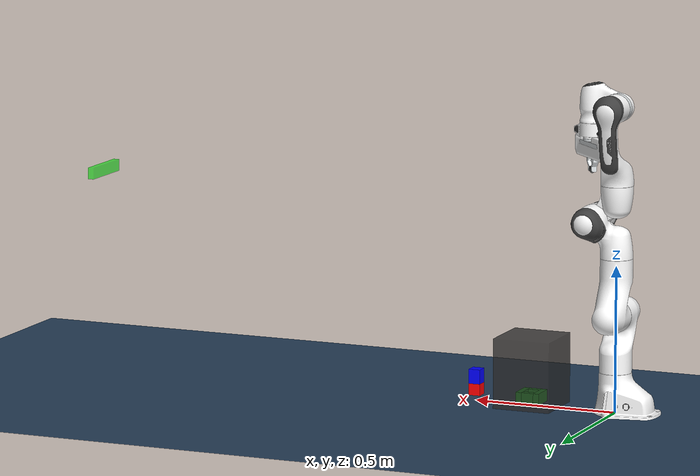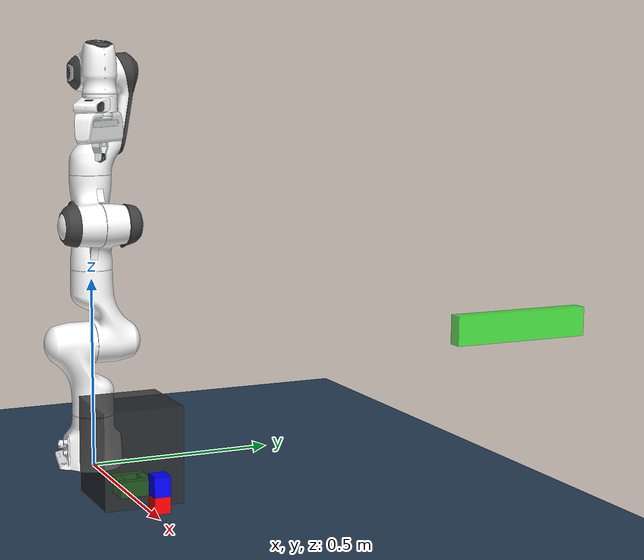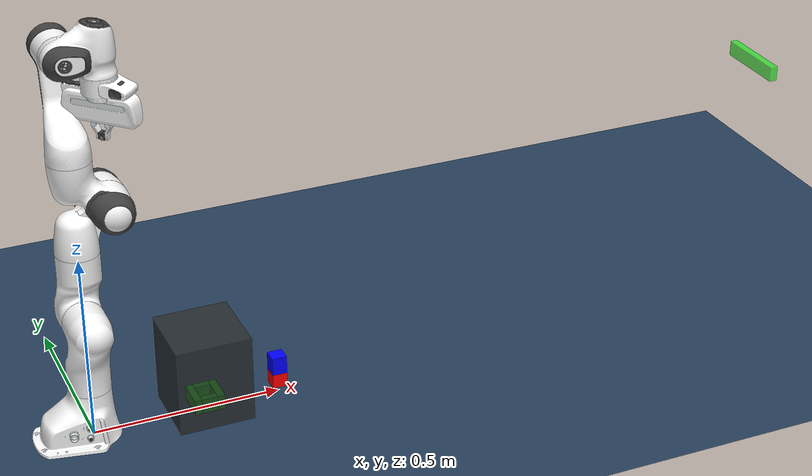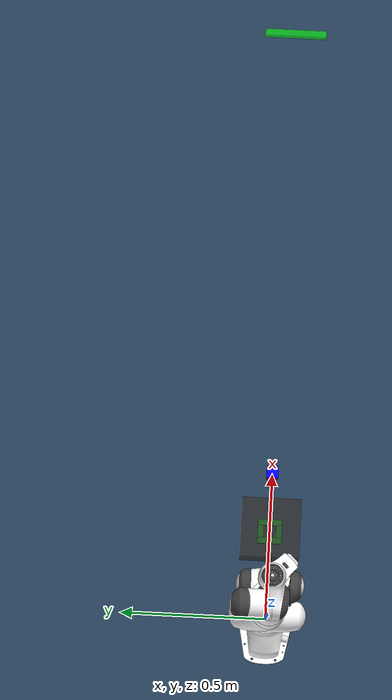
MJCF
<mujoco model="panda_peg_hole">
    <option integrator="implicit"
            timestep="0.001"
            gravity="0 0 -9.81"
            cone = "elliptic"
            iterations="300"
            tolerance="1e-12"
            />

  <include file="panda.xml"/>

  <statistic center="0.3 0 0.4" extent="1"/>

  <visual>
    <headlight diffuse="0.6 0.6 0.6" ambient="0.3 0.3 0.3" specular="0 0 0"/>
    <rgba haze="0.15 0.25 0.35 1"/>
    <global azimuth="120" elevation="-20"/>
  </visual>

  <asset>
    <texture type="skybox" builtin="gradient" rgb1="0.3 0.5 0.7" rgb2="0 0 0" width="512" height="3072"/>
    <texture type="2d" name="groundplane" builtin="checker" mark="edge" rgb1="0.2 0.3 0.4" rgb2="0.1 0.2 0.3"
      markrgb="0.8 0.8 0.8" width="300" height="300"/>
    <material name="groundplane" texture="groundplane" texuniform="true" texrepeat="5 5" reflectance="0.2"/>
  </asset>

  <worldbody>
    <light pos="0 0 1.5" dir="0 0 -1" directional="true"/>
    <geom name="floor" size="0 0 0.05" type="plane" material="groundplane"/>

    <body name="top_camera"  pos="1.9 0 0.7" euler="0 0 0">
          <camera name="top_camera" pos="0. 0. 0." mode="fixed" quat="0.56 0.43 0.43 0.56" fovy="45"/>
          <geom type="box" size="0.01 0.1 0.02" rgba="0. 1.0 0. 0.6" class="visual"/>
    </body>

  <body name="peg" pos="0.5 0 0.04">
    <freejoint name="peg"/>
    <geom name="peg_geom_down" pos="0 0 0" size="0.02 0.02 0.02" type="box" rgba="1 0 0 1" mass="0.005" friction="30.0 0.15 0.05" condim="4"/>
    <geom name="peg_geom_up" pos="0 0 0.045" size="0.02 0.02 0.025" type="box" rgba="0 0 1 1" mass="0.1" friction="30.0 0.15 0.05" solref="0.001 1"
          solimp="0.99 0.99 0.0001" condim="4"/>
  </body>

  <body name="hole" pos="0.3 0 0.03">
    <geom name="hole_left" type="box" pos="-0.031 0 0" size="0.01 0.041 0.02" rgba="0 1 0 1"/>
    <geom name="hole_right" type="box" pos="0.031 0 0" size="0.01 0.041 0.02" rgba="0 1 0 1"/>
    <geom name="hole_front" type="box" pos="0 0.031 0" size="0.021 0.01 0.02" rgba="0 1 0 1"/>
    <geom name="hole_back" type="box" pos="0 -0.031 0" size="0.021 0.01 0.02" rgba="0 1 0 1"/>
  </body>

  <body name="table" pos="0.3 0 0.12">
    <geom name="table" type="box" pos="0 0 0" size="0.1 0.1 0.12" rgba="0.2 0.2 0.2 0.8"/>
  </body>

  </worldbody>

    <keyframe>
        <key
  name="grasp_home"
  qpos="1.89918e-16 -0.784093 0.000184611 -2.36231 -0.00031656 1.56986 0.785 0.0199969 0.0199969 0.306079 -3.20559e-05 0.42704 0.999997 -0.000221118 -0.00243535 0.000266194"
  ctrl="0 -0.785 0 -2.356 0 1.571 0.785 0"
    />
</keyframe>

</mujoco>

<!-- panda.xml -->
<mujoco model="panda">
  <compiler angle="radian" meshdir="assets" autolimits="true"/>

  <option integrator="implicitfast"/>

  <default>
    <default class="panda">
      <material specular="0.5" shininess="0.25"/>
      <joint armature="0.1" damping="1" axis="0 0 1" range="-2.8973 2.8973"/>
      <general dyntype="none" biastype="affine" ctrlrange="-2.8973 2.8973" forcerange="-87 87"/>
      <default class="finger">
        <joint axis="0 1 0" type="slide" range="0 0.04"/>
      </default>

      <default class="visual">
        <geom type="mesh" contype="0" conaffinity="0" group="2"/>
      </default>
      <default class="collision">
  <geom type="mesh"
        group="3"
        friction="10 0.1 0.01"
        condim="4"
        solref="0.003 1"
        solimp="0.95 0.99 0.001"/>

  <default class="fingertip_pad_collision_1">
    <geom type="box"
          size="0.0085 0.004 0.0085"
          pos="0 0.0055 0.0445"
          friction="10 0.1 0.01"
          condim="4"
          solref="0.003 1"
          solimp="0.95 0.99 0.001"/>
  </default>

  <default class="fingertip_pad_collision_2">
    <geom type="box"
          size="0.003 0.002 0.003"
          pos="0.0055 0.002 0.05"
          friction="10 0.1 0.01"
          condim="4"
          solref="0.003 1"
          solimp="0.95 0.99 0.001"/>
  </default>

  <default class="fingertip_pad_collision_3">
    <geom type="box"
          size="0.003 0.002 0.003"
          pos="-0.0055 0.002 0.05"
          friction="10 0.1 0.01"
          condim="4"
          solref="0.003 1"
          solimp="0.95 0.99 0.001"/>
  </default>

  <default class="fingertip_pad_collision_4">
    <geom type="box"
          size="0.003 0.002 0.0035"
          pos="0.0055 0.002 0.0395"
          friction="10 0.1 0.01"
          condim="4"
          solref="0.003 1"
          solimp="0.95 0.99 0.001"/>
  </default>

  <default class="fingertip_pad_collision_5">
    <geom type="box"
          size="0.003 0.002 0.0035"
          pos="-0.0055 0.002 0.0395"
          friction="10 0.1 0.01"
          condim="4"
          solref="0.003 1"
          solimp="0.95 0.99 0.001"/>
  </default>
</default>
    </default>
  </default>

  <asset>
    <material class="panda" name="white" rgba="1 1 1 1"/>
    <material class="panda" name="off_white" rgba="0.901961 0.921569 0.929412 1"/>
    <material class="panda" name="black" rgba="0.25 0.25 0.25 1"/>
    <material class="panda" name="green" rgba="0 1 0 1"/>
    <material class="panda" name="light_blue" rgba="0.039216 0.541176 0.780392 1"/>

    <!-- Collision meshes -->
    <mesh name="link0_c" file="link0.stl"/>
    <mesh name="link1_c" file="link1.stl"/>
    <mesh name="link2_c" file="link2.stl"/>
    <mesh name="link3_c" file="link3.stl"/>
    <mesh name="link4_c" file="link4.stl"/>
    <mesh name="link5_c0" file="link5_collision_0.obj"/>
    <mesh name="link5_c1" file="link5_collision_1.obj"/>
    <mesh name="link5_c2" file="link5_collision_2.obj"/>
    <mesh name="link6_c" file="link6.stl"/>
    <mesh name="link7_c" file="link7.stl"/>
    <mesh name="hand_c" file="hand.stl"/>

    <!-- Visual meshes -->
    <mesh file="link0_0.obj"/>
    <mesh file="link0_1.obj"/>
    <mesh file="link0_2.obj"/>
    <mesh file="link0_3.obj"/>
    <mesh file="link0_4.obj"/>
    <mesh file="link0_5.obj"/>
    <mesh file="link0_7.obj"/>
    <mesh file="link0_8.obj"/>
    <mesh file="link0_9.obj"/>
    <mesh file="link0_10.obj"/>
    <mesh file="link0_11.obj"/>
    <mesh file="link1.obj"/>
    <mesh file="link2.obj"/>
    <mesh file="link3_0.obj"/>
    <mesh file="link3_1.obj"/>
    <mesh file="link3_2.obj"/>
    <mesh file="link3_3.obj"/>
    <mesh file="link4_0.obj"/>
    <mesh file="link4_1.obj"/>
    <mesh file="link4_2.obj"/>
    <mesh file="link4_3.obj"/>
    <mesh file="link5_0.obj"/>
    <mesh file="link5_1.obj"/>
    <mesh file="link5_2.obj"/>
    <mesh file="link6_0.obj"/>
    <mesh file="link6_1.obj"/>
    <mesh file="link6_2.obj"/>
    <mesh file="link6_3.obj"/>
    <mesh file="link6_4.obj"/>
    <mesh file="link6_5.obj"/>
    <mesh file="link6_6.obj"/>
    <mesh file="link6_7.obj"/>
    <mesh file="link6_8.obj"/>
    <mesh file="link6_9.obj"/>
    <mesh file="link6_10.obj"/>
    <mesh file="link6_11.obj"/>
    <mesh file="link6_12.obj"/>
    <mesh file="link6_13.obj"/>
    <mesh file="link6_14.obj"/>
    <mesh file="link6_15.obj"/>
    <mesh file="link6_16.obj"/>
    <mesh file="link7_0.obj"/>
    <mesh file="link7_1.obj"/>
    <mesh file="link7_2.obj"/>
    <mesh file="link7_3.obj"/>
    <mesh file="link7_4.obj"/>
    <mesh file="link7_5.obj"/>
    <mesh file="link7_6.obj"/>
    <mesh file="link7_7.obj"/>
    <mesh file="hand_0.obj"/>
    <mesh file="hand_1.obj"/>
    <mesh file="hand_2.obj"/>
    <mesh file="hand_3.obj"/>
    <mesh file="hand_4.obj"/>
    <mesh file="finger_0.obj"/>
    <mesh file="finger_1.obj"/>
  </asset>

  <worldbody>
    <light name="top" pos="0 0 2" mode="trackcom"/>
    <body name="link0" childclass="panda">
      <inertial mass="0.629769" pos="-0.041018 -0.00014 0.049974"
                fullinertia="0.00315 0.00388 0.004285 8.2904e-7 0.00015 8.2299e-6"/>
      <geom mesh="link0_0" material="off_white" class="visual"/>
      <geom mesh="link0_1" material="black" class="visual"/>
      <geom mesh="link0_2" material="off_white" class="visual"/>
      <geom mesh="link0_3" material="black" class="visual"/>
      <geom mesh="link0_4" material="off_white" class="visual"/>
      <geom mesh="link0_5" material="black" class="visual"/>
      <geom mesh="link0_7" material="white" class="visual"/>
      <geom mesh="link0_8" material="white" class="visual"/>
      <geom mesh="link0_9" material="black" class="visual"/>
      <geom mesh="link0_10" material="off_white" class="visual"/>
      <geom mesh="link0_11" material="white" class="visual"/>
      <geom mesh="link0_c" class="collision"/>
      <body name="link1" pos="0 0 0.333">
        <inertial mass="4.970684" pos="0.003875 0.002081 -0.04762"
          fullinertia="0.70337 0.70661 0.0091170 -0.00013900 0.0067720 0.019169"/>
        <joint name="joint1"/>
        <geom material="white" mesh="link1" class="visual"/>
        <geom mesh="link1_c" class="collision"/>
        <body name="link2" quat="1 -1 0 0">
          <inertial mass="0.646926" pos="-0.003141 -0.02872 0.003495"
            fullinertia="0.0079620 2.8110e-2 2.5995e-2 -3.925e-3 1.0254e-2 7.04e-4"/>
          <joint name="joint2" range="-1.7628 1.7628"/>
          <geom material="white" mesh="link2" class="visual"/>
          <geom mesh="link2_c" class="collision"/>
          <body name="link3" pos="0 -0.316 0" quat="1 1 0 0">
            <joint name="joint3"/>
            <inertial mass="3.228604" pos="2.7518e-2 3.9252e-2 -6.6502e-2"
              fullinertia="3.7242e-2 3.6155e-2 1.083e-2 -4.761e-3 -1.1396e-2 -1.2805e-2"/>
            <geom mesh="link3_0" material="white" class="visual"/>
            <geom mesh="link3_1" material="white" class="visual"/>
            <geom mesh="link3_2" material="white" class="visual"/>
            <geom mesh="link3_3" material="black" class="visual"/>
            <geom mesh="link3_c" class="collision"/>
            <body name="link4" pos="0.0825 0 0" quat="1 1 0 0">
              <inertial mass="3.587895" pos="-5.317e-2 1.04419e-1 2.7454e-2"
                fullinertia="2.5853e-2 1.9552e-2 2.8323e-2 7.796e-3 -1.332e-3 8.641e-3"/>
              <joint name="joint4" range="-3.0718 -0.0698"/>
              <geom mesh="link4_0" material="white" class="visual"/>
              <geom mesh="link4_1" material="white" class="visual"/>
              <geom mesh="link4_2" material="black" class="visual"/>
              <geom mesh="link4_3" material="white" class="visual"/>
              <geom mesh="link4_c" class="collision"/>
              <body name="link5" pos="-0.0825 0.384 0" quat="1 -1 0 0">
                <inertial mass="1.225946" pos="-1.1953e-2 4.1065e-2 -3.8437e-2"
                  fullinertia="3.5549e-2 2.9474e-2 8.627e-3 -2.117e-3 -4.037e-3 2.29e-4"/>
                <joint name="joint5"/>
                <geom mesh="link5_0" material="black" class="visual"/>
                <geom mesh="link5_1" material="white" class="visual"/>
                <geom mesh="link5_2" material="white" class="visual"/>
                <geom mesh="link5_c0" class="collision"/>
                <geom mesh="link5_c1" class="collision"/>
                <geom mesh="link5_c2" class="collision"/>
                <body name="link6" quat="1 1 0 0">
                  <inertial mass="1.666555" pos="6.0149e-2 -1.4117e-2 -1.0517e-2"
                    fullinertia="1.964e-3 4.354e-3 5.433e-3 1.09e-4 -1.158e-3 3.41e-4"/>
                  <joint name="joint6" range="-0.0175 3.7525"/>
                  <geom mesh="link6_0" material="off_white" class="visual"/>
                  <geom mesh="link6_1" material="white" class="visual"/>
                  <geom mesh="link6_2" material="black" class="visual"/>
                  <geom mesh="link6_3" material="white" class="visual"/>
                  <geom mesh="link6_4" material="white" class="visual"/>
                  <geom mesh="link6_5" material="white" class="visual"/>
                  <geom mesh="link6_6" material="white" class="visual"/>
                  <geom mesh="link6_7" material="light_blue" class="visual"/>
                  <geom mesh="link6_8" material="light_blue" class="visual"/>
                  <geom mesh="link6_9" material="black" class="visual"/>
                  <geom mesh="link6_10" material="black" class="visual"/>
                  <geom mesh="link6_11" material="white" class="visual"/>
                  <geom mesh="link6_12" material="green" class="visual"/>
                  <geom mesh="link6_13" material="white" class="visual"/>
                  <geom mesh="link6_14" material="black" class="visual"/>
                  <geom mesh="link6_15" material="black" class="visual"/>
                  <geom mesh="link6_16" material="white" class="visual"/>
                  <geom mesh="link6_c" class="collision"/>
                  <body name="link7" pos="0.088 0 0" quat="1 1 0 0">
                    <inertial mass="7.35522e-01" pos="1.0517e-2 -4.252e-3 6.1597e-2"
                      fullinertia="1.2516e-2 1.0027e-2 4.815e-3 -4.28e-4 -1.196e-3 -7.41e-4"/>
                    <joint name="joint7"/>
                    <geom mesh="link7_0" material="white" class="visual"/>
                    <geom mesh="link7_1" material="black" class="visual"/>
                    <geom mesh="link7_2" material="black" class="visual"/>
                    <geom mesh="link7_3" material="black" class="visual"/>
                    <geom mesh="link7_4" material="black" class="visual"/>
                    <geom mesh="link7_5" material="black" class="visual"/>
                    <geom mesh="link7_6" material="black" class="visual"/>
                    <geom mesh="link7_7" material="white" class="visual"/>
                    <geom mesh="link7_c" class="collision"/>
                    <body name="hand" pos="0 0 0.107" quat="0.9238795 0 0 -0.3826834">
                      <inertial mass="0.73" pos="-0.01 0 0.03" diaginertia="0.001 0.0025 0.0017"/>
                      <!-- 插入腕部相机 -->
                      <camera name="wrist_camera" pos="0.05 0 0" fovy="50" mode="fixed" zaxis="0 0 -1"/>
                      <geom mesh="hand_0" material="off_white" class="visual"/>
                      <geom mesh="hand_1" material="black" class="visual"/>
                      <geom mesh="hand_2" material="black" class="visual"/>
                      <geom mesh="hand_3" material="white" class="visual"/>
                      <geom mesh="hand_4" material="off_white" class="visual"/>

                      <geom mesh="hand_c" class="collision"/>
                      <site name="attachment_site" pos="0 0 0.107" quat="0.9238795 0 0 -0.3826834" size="0.01" type="sphere"/>
                      <body name="left_finger" pos="0 0 0.0584">
                        <inertial mass="0.015" pos="0 0 0" diaginertia="2.375e-6 2.375e-6 7.5e-7"/>
                        <joint name="finger_joint1" class="finger"/>
                        <geom mesh="finger_0" material="off_white" class="visual"/>
                        <geom mesh="finger_1" material="black" class="visual"/>
                        <geom mesh="finger_0" class="collision"/>
                        <geom class="fingertip_pad_collision_1"/>
                        <geom class="fingertip_pad_collision_2"/>
                        <geom class="fingertip_pad_collision_3"/>
                        <geom class="fingertip_pad_collision_4"/>
                        <geom class="fingertip_pad_collision_5"/>
                      </body>
                      <body name="right_finger" pos="0 0 0.0584" quat="0 0 0 1">
                        <inertial mass="0.015" pos="0 0 0" diaginertia="2.375e-6 2.375e-6 7.5e-7"/>
                        <joint name="finger_joint2" class="finger"/>
                        <geom mesh="finger_0" material="off_white" class="visual"/>
                        <geom mesh="finger_1" material="black" class="visual"/>
                        <geom mesh="finger_0" class="collision"/>
                        <geom class="fingertip_pad_collision_1"/>
                        <geom class="fingertip_pad_collision_2"/>
                        <geom class="fingertip_pad_collision_3"/>
                        <geom class="fingertip_pad_collision_4"/>
                        <geom class="fingertip_pad_collision_5"/>
                      </body>
                    </body>
                  </body>
                </body>
              </body>
            </body>
          </body>
        </body>
      </body>
    </body>
  </worldbody>

  <tendon>
    <fixed name="split">
      <joint joint="finger_joint1" coef="0.5"/>
      <joint joint="finger_joint2" coef="0.5"/>
    </fixed>
  </tendon>

  <equality>
    <joint joint1="finger_joint1" joint2="finger_joint2" solimp="0.95 0.99 0.001" solref="0.005 1"/>
  </equality>

  <actuator>
    <general class="panda" name="actuator1" joint="joint1" gainprm="4500" biasprm="0 -4500 -450"/>
    <general class="panda" name="actuator2" joint="joint2" gainprm="4500" biasprm="0 -4500 -450"
      ctrlrange="-1.7628 1.7628"/>
    <general class="panda" name="actuator3" joint="joint3" gainprm="3500" biasprm="0 -3500 -350"/>
    <general class="panda" name="actuator4" joint="joint4" gainprm="3500" biasprm="0 -3500 -350"
      ctrlrange="-3.0718 -0.0698"/>
    <general class="panda" name="actuator5" joint="joint5" gainprm="2000" biasprm="0 -2000 -200" forcerange="-12 12"/>
    <general class="panda" name="actuator6" joint="joint6" gainprm="2000" biasprm="0 -2000 -200" forcerange="-12 12"
      ctrlrange="-0.0175 3.7525"/>
    <general class="panda" name="actuator7" joint="joint7" gainprm="2000" biasprm="0 -2000 -200" forcerange="-12 12"/>
    <!-- Remap original ctrlrange (0, 0.04) to (0, 255): 0.04 * 100 / 255 = 0.01568627451 -->
    <general class="panda" name="actuator8" tendon="split" forcerange="-100 100" ctrlrange="0 255"
      gainprm="0.01568627451 0 0" biasprm="0 -100 -10"/>
  </actuator>

  <contact>
    <exclude body1="link0" body2="link1"/>
  </contact>
</mujoco>
